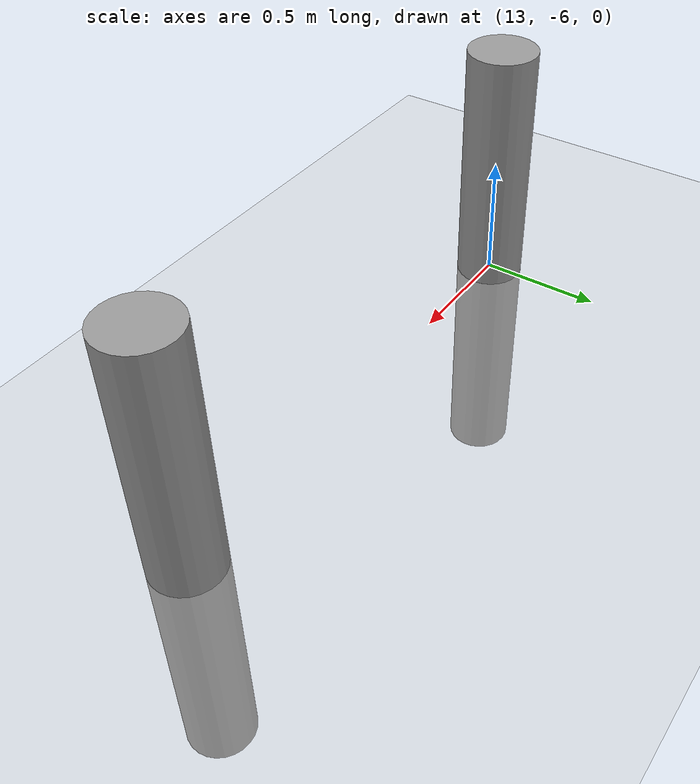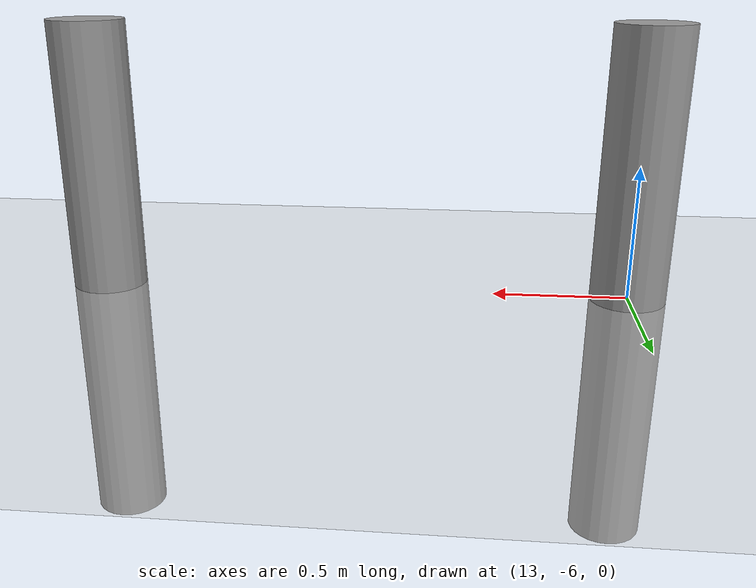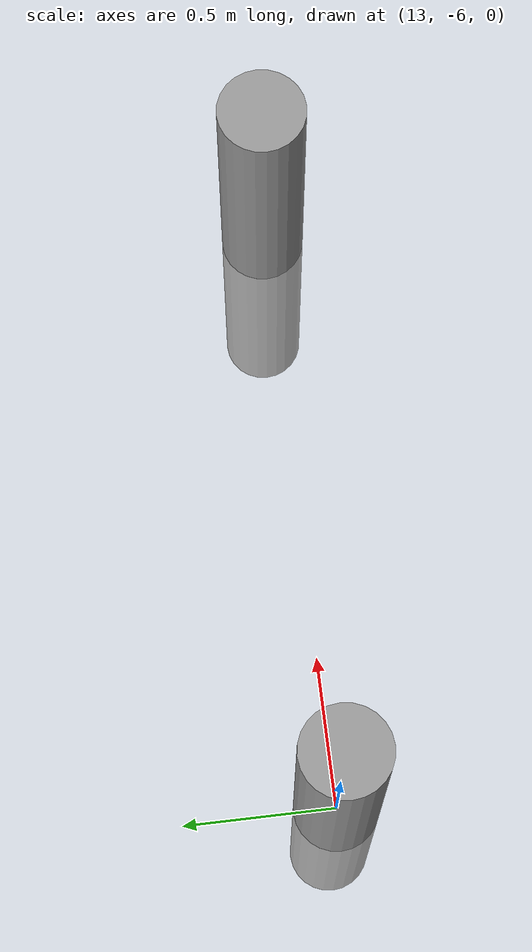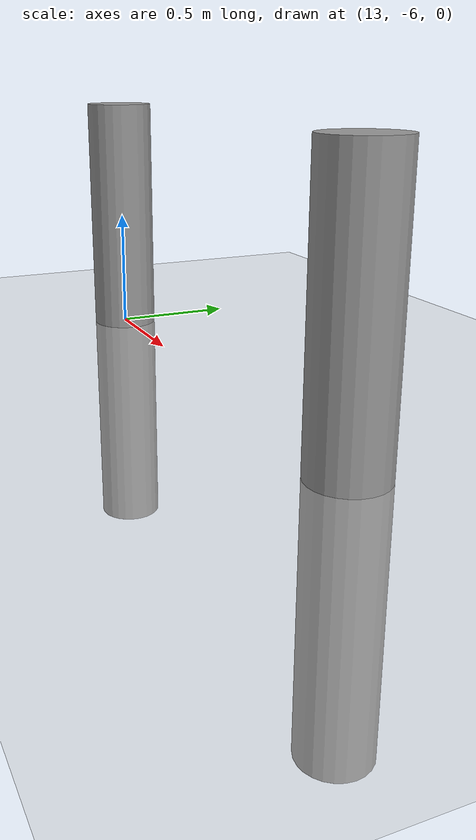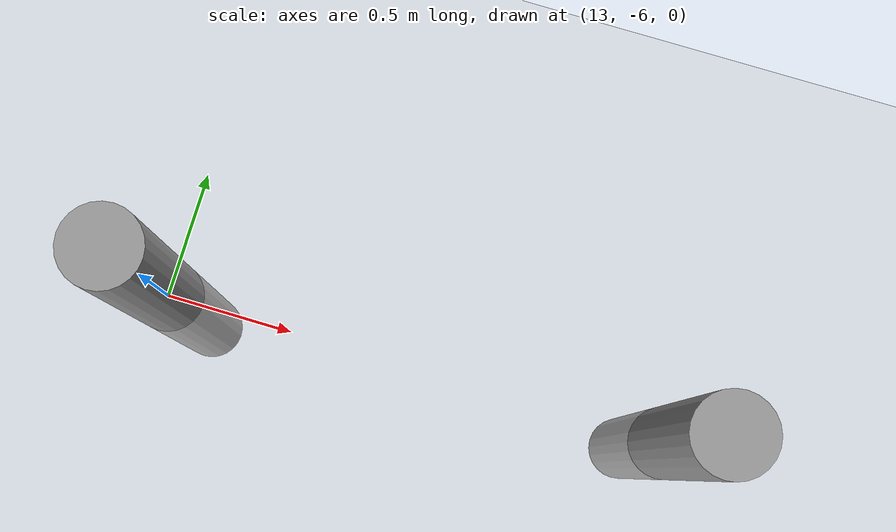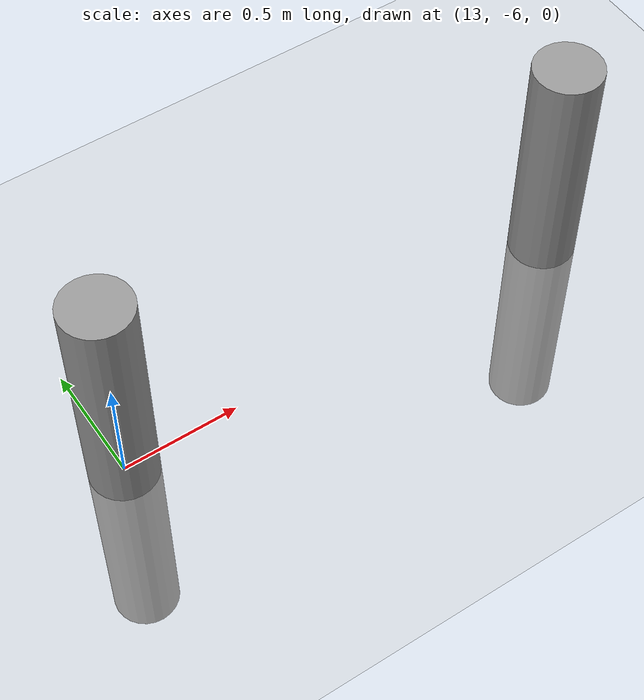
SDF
<sdf version="1.6">
 <world name="default">
  <model name="ground_plane">
   <static>1</static>
   <link name="link">
    <collision name="collision">
     <geometry><plane><normal>0 0 1</normal><size>100 100</size></plane></geometry>
     <surface><friction><ode><mu>100</mu><mu2>50</mu2></ode></friction></surface>
    </collision>
    <visual name="visual">
     <cast_shadows>0</cast_shadows>
     <geometry><plane><normal>0 0 1</normal><size>100 100</size></plane></geometry>
     <material>
      <script><uri>file://media/materials/scripts/gazebo.material</uri><name>Gazebo/Grey</name></script>
     </material>
    </visual>
   </link>
  </model>
  <model name="my_cylinder014_clone_47">
   <pose>15 -6 0 0 -0 0</pose>
   <link name="my_cylinder014::link">
    <inertial>
     <mass>1</mass>
     <inertia><ixx>0.145833</ixx><ixy>0</ixy><ixz>0</ixz><iyy>0.145833</iyy><iyz>0</iyz><izz>0.125</izz></inertia>
    </inertial>
    <visual name="visual">
     <geometry><cylinder><radius>0.14</radius><length>2</length></cylinder></geometry>
     <material>
      <script><name>Gazebo/Grey</name><uri>file://media/materials/scripts/gazebo.material</uri></script>
      <ambient>0.3 0.3 0.3 1</ambient>
      <diffuse>0.7 0.7 0.7 1</diffuse>
      <specular>1 0.01 0.01 1</specular>
      <emissive>0 0 0 1</emissive>
      <shader type="vertex"><normal_map>__default__</normal_map></shader>
     </material>
    </visual>
    <collision name="collision">
     <geometry><cylinder><radius>0.14</radius><length>2</length></cylinder></geometry>
     <surface>
      <friction>
       <ode><mu>1</mu><mu2>1</mu2><fdir1>0 0 0</fdir1><slip1>0</slip1><slip2>0</slip2></ode>
       <torsional>
        <coefficient>1</coefficient>
        <patch_radius>0</patch_radius>
        <surface_radius>0</surface_radius>
        <use_patch_radius>1</use_patch_radius>
        <ode><slip>0</slip></ode>
       </torsional>
      </friction>
      <bounce><restitution_coefficient>0</restitution_coefficient><threshold>1e+06</threshold></bounce>
      <contact>
       <collide_without_contact>0</collide_without_contact>
       <collide_without_contact_bitmask>1</collide_without_contact_bitmask>
       <collide_bitmask>1</collide_bitmask>
       <ode>
        <soft_cfm>0</soft_cfm>
        <soft_erp>0.2</soft_erp>
        <kp>1e+13</kp>
        <kd>1</kd>
        <max_vel>0.01</max_vel>
        <min_depth>0</min_depth>
       </ode>
       <bullet>
        <split_impulse>1</split_impulse>
        <split_impulse_penetration_threshold>-0.01</split_impulse_penetration_threshold>
        <soft_cfm>0</soft_cfm>
        <soft_erp>0.2</soft_erp>
        <kp>1e+13</kp>
        <kd>1</kd>
       </bullet>
      </contact>
     </surface>
    </collision>
   </link>
   <static>1</static>
  </model>
  <model name="my_cylinder014_clone_47">
   <pose>15 -6 0 0 -0 0</pose>
   <link name="my_cylinder014::link">
    <inertial>
     <mass>1</mass>
     <inertia><ixx>0.145833</ixx><ixy>0</ixy><ixz>0</ixz><iyy>0.145833</iyy><iyz>0</iyz><izz>0.125</izz></inertia>
    </inertial>
    <visual name="visual">
     <geometry><cylinder><radius>0.14</radius><length>2</length></cylinder></geometry>
     <material>
      <script><name>Gazebo/Grey</name><uri>file://media/materials/scripts/gazebo.material</uri></script>
      <ambient>0.3 0.3 0.3 1</ambient>
      <diffuse>0.7 0.7 0.7 1</diffuse>
      <specular>1 0.01 0.01 1</specular>
      <emissive>0 0 0 1</emissive>
      <shader type="vertex"><normal_map>__default__</normal_map></shader>
     </material>
    </visual>
    <collision name="collision">
     <geometry><cylinder><radius>0.14</radius><length>2</length></cylinder></geometry>
     <surface>
      <friction>
       <ode><mu>1</mu><mu2>1</mu2><fdir1>0 0 0</fdir1><slip1>0</slip1><slip2>0</slip2></ode>
       <torsional>
        <coefficient>1</coefficient>
        <patch_radius>0</patch_radius>
        <surface_radius>0</surface_radius>
        <use_patch_radius>1</use_patch_radius>
        <ode><slip>0</slip></ode>
       </torsional>
      </friction>
      <bounce><restitution_coefficient>0</restitution_coefficient><threshold>1e+06</threshold></bounce>
      <contact>
       <collide_without_contact>0</collide_without_contact>
       <collide_without_contact_bitmask>1</collide_without_contact_bitmask>
       <collide_bitmask>1</collide_bitmask>
       <ode>
        <soft_cfm>0</soft_cfm>
        <soft_erp>0.2</soft_erp>
        <kp>1e+13</kp>
        <kd>1</kd>
        <max_vel>0.01</max_vel>
        <min_depth>0</min_depth>
       </ode>
       <bullet>
        <split_impulse>1</split_impulse>
        <split_impulse_penetration_threshold>-0.01</split_impulse_penetration_threshold>
        <soft_cfm>0</soft_cfm>
        <soft_erp>0.2</soft_erp>
        <kp>1e+13</kp>
        <kd>1</kd>
       </bullet>
      </contact>
     </surface>
    </collision>
   </link>
   <static>1</static>
  </model>
  <model name="my_cylinder014_clone_46">
   <pose>13 -6 0 0 -0 0</pose>
   <link name="my_cylinder014::link">
    <inertial>
     <mass>1</mass>
     <inertia><ixx>0.145833</ixx><ixy>0</ixy><ixz>0</ixz><iyy>0.145833</iyy><iyz>0</iyz><izz>0.125</izz></inertia>
    </inertial>
    <visual name="visual">
     <geometry><cylinder><radius>0.14</radius><length>2</length></cylinder></geometry>
     <material>
      <script><name>Gazebo/Grey</name><uri>file://media/materials/scripts/gazebo.material</uri></script>
      <ambient>0.3 0.3 0.3 1</ambient>
      <diffuse>0.7 0.7 0.7 1</diffuse>
      <specular>1 0.01 0.01 1</specular>
      <emissive>0 0 0 1</emissive>
      <shader type="vertex"><normal_map>__default__</normal_map></shader>
     </material>
    </visual>
    <collision name="collision">
     <geometry><cylinder><radius>0.14</radius><length>2</length></cylinder></geometry>
     <surface>
      <friction>
       <ode><mu>1</mu><mu2>1</mu2><fdir1>0 0 0</fdir1><slip1>0</slip1><slip2>0</slip2></ode>
       <torsional>
        <coefficient>1</coefficient>
        <patch_radius>0</patch_radius>
        <surface_radius>0</surface_radius>
        <use_patch_radius>1</use_patch_radius>
        <ode><slip>0</slip></ode>
       </torsional>
      </friction>
      <bounce><restitution_coefficient>0</restitution_coefficient><threshold>1e+06</threshold></bounce>
      <contact>
       <collide_without_contact>0</collide_without_contact>
       <collide_without_contact_bitmask>1</collide_without_contact_bitmask>
       <collide_bitmask>1</collide_bitmask>
       <ode>
        <soft_cfm>0</soft_cfm>
        <soft_erp>0.2</soft_erp>
        <kp>1e+13</kp>
        <kd>1</kd>
        <max_vel>0.01</max_vel>
        <min_depth>0</min_depth>
       </ode>
       <bullet>
        <split_impulse>1</split_impulse>
        <split_impulse_penetration_threshold>-0.01</split_impulse_penetration_threshold>
        <soft_cfm>0</soft_cfm>
        <soft_erp>0.2</soft_erp>
        <kp>1e+13</kp>
        <kd>1</kd>
       </bullet>
      </contact>
     </surface>
    </collision>
   </link>
   <static>1</static>
  </model>
 </world>
</sdf>
